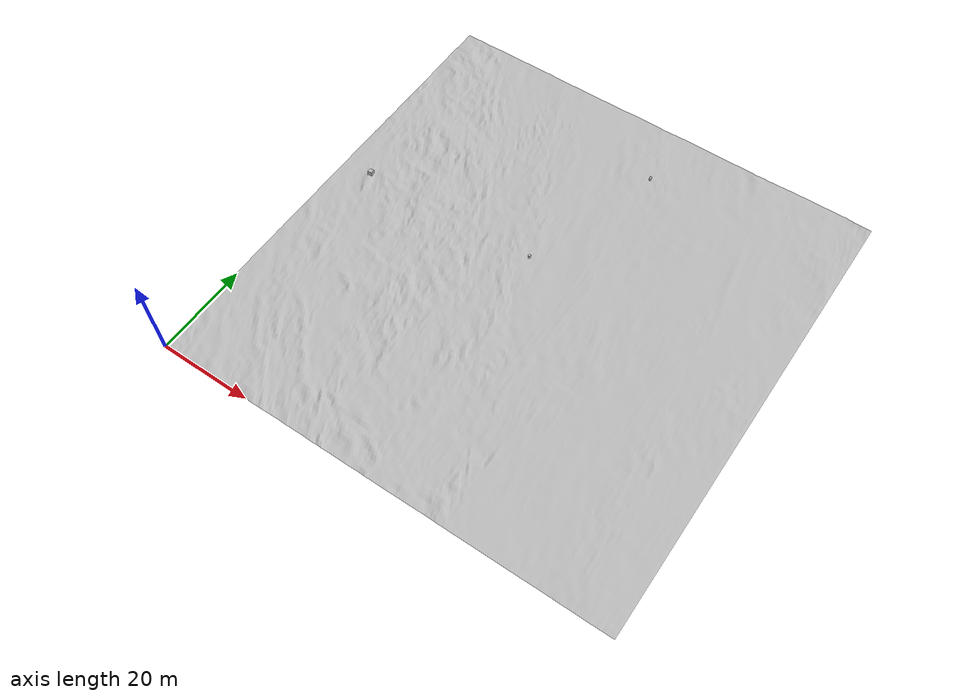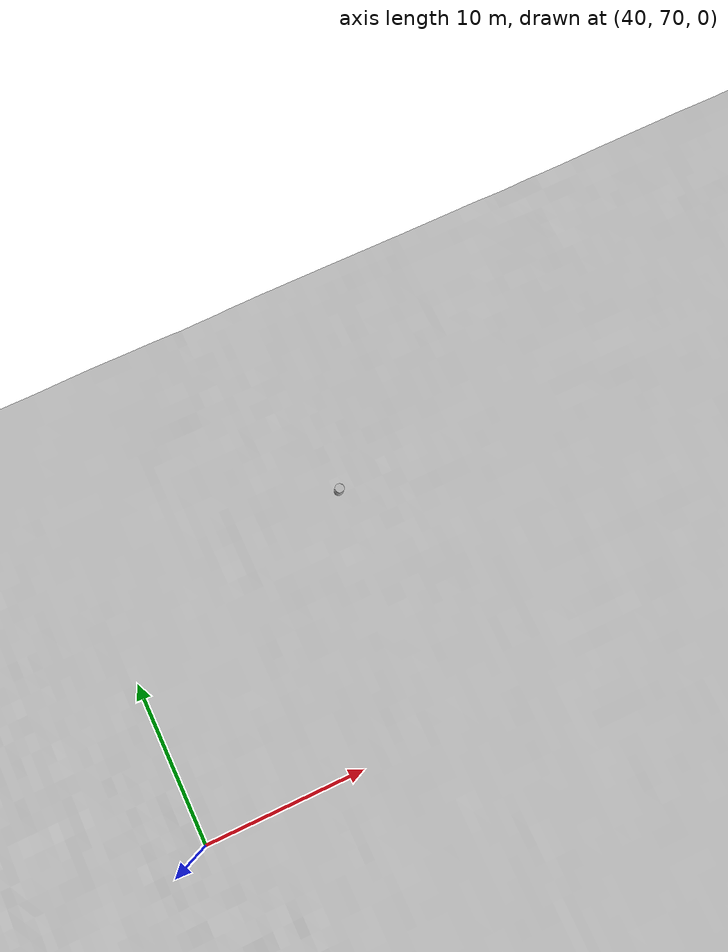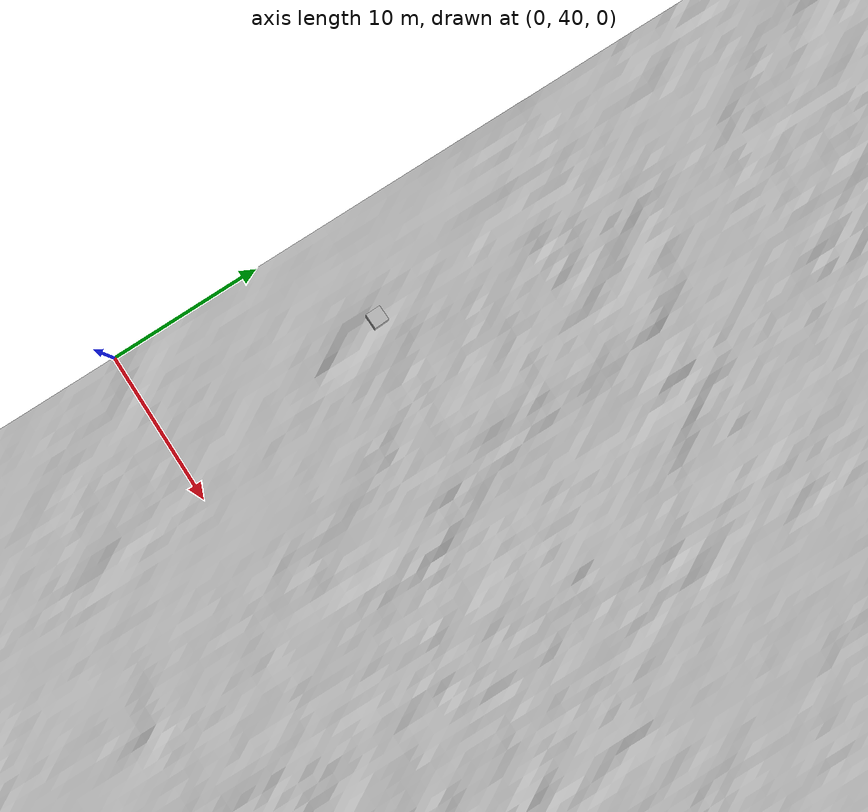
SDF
<sdf version="1.4">
 <world name="default">
  <include><uri>model://sun</uri></include>
  <scene>
   <sky><time>10</time><clouds><speed>5</speed><direction>1.14</direction><humidity>0.3</humidity></clouds></sky>
  </scene>
  <include><uri>model://srvss_terrain1</uri></include>
  <include>
   <uri>model://cube1</uri>
   <pose>5.93555 54.0129 0.205984 -0.0731386 -0.0211955 0.0423611</pose>
   <scale>2.79961 2.79961 2.79961</scale>
   <name>object0</name>
  </include>
  <include>
   <uri>model://barrel1</uri>
   <pose>55.5411 85.4895 0.152983 0.0147501 0.0864902 0.0527223</pose>
   <scale>4.63635 4.63635 4.63635</scale>
   <name>object1</name>
  </include>
  <include>
   <uri>model://barrel1</uri>
   <pose>45.7327 55.1304 0.220595 -0.0588501 -0.00218891 -0.0779887</pose>
   <scale>3.06272 3.06272 3.06272</scale>
   <name>object2</name>
  </include>
 </world>
</sdf>

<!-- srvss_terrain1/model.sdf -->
<sdf version="1.4">
    <model name="terrain">
        <static>true</static>
        <link name="terrain1">
            <pose>0 0 0 0 0 0</pose>
            <collision name="terrain1_collision">
                <geometry>
                    <mesh>
                        <uri>model://srvss_terrain1/meshes/terrain1.dae</uri>
                    </mesh>
                </geometry>
		<surface>
		  <friction>
		    <ode>
		      <mu>100</mu>
		      <mu2>100</mu2>
		    </ode>
		  </friction>
		</surface>
            </collision>
            <visual name="terrain1_visual">
                <geometry>
                    <mesh>
                        <uri>model://srvss_terrain1/meshes/terrain1.dae</uri>
                    </mesh>
                </geometry>
                <material>
                    <script>
                        <uri>model://srvss_terrain1/materials/scripts</uri>
                        <uri>model://srvss_terrain1/materials/textures</uri>
                        <name>terrain/terrain1</name>
                    </script>
                </material>
            </visual>
        </link>
    </model>
</sdf>

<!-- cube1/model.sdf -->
<sdf version="1.4">
  <model name="dany">
    <static>true</static>
    <link name="link">
      <collision name="collision">
        <geometry>
          <mesh>
             <uri>model://cube1/models/cube1.dae</uri>
	<scale>1 1 1</scale>
          </mesh>
        </geometry>
      </collision>
      <visual name="visual">
         <geometry>
          <mesh>
		<uri>model://cube1/models/cube1.dae</uri>
	       <scale>1 1 1</scale>
          </mesh>
        </geometry>
      </visual>
    </link>
  </model>
</sdf>

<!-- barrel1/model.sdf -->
<sdf version="1.4">
  <model name="barrel1">
    <static>true</static>
    <link name="link">
      <collision name="collision">
        <geometry>
          <mesh>
		<uri>model://barrel1/models/barrel1.dae</uri>
          </mesh>
        </geometry>
      </collision>
      <visual name="visual">
         <geometry>
          <mesh>
		<uri>model://barrel1/models/barrel1.dae</uri>
          </mesh>
        </geometry>
      </visual>
    </link>
  </model>
</sdf>
